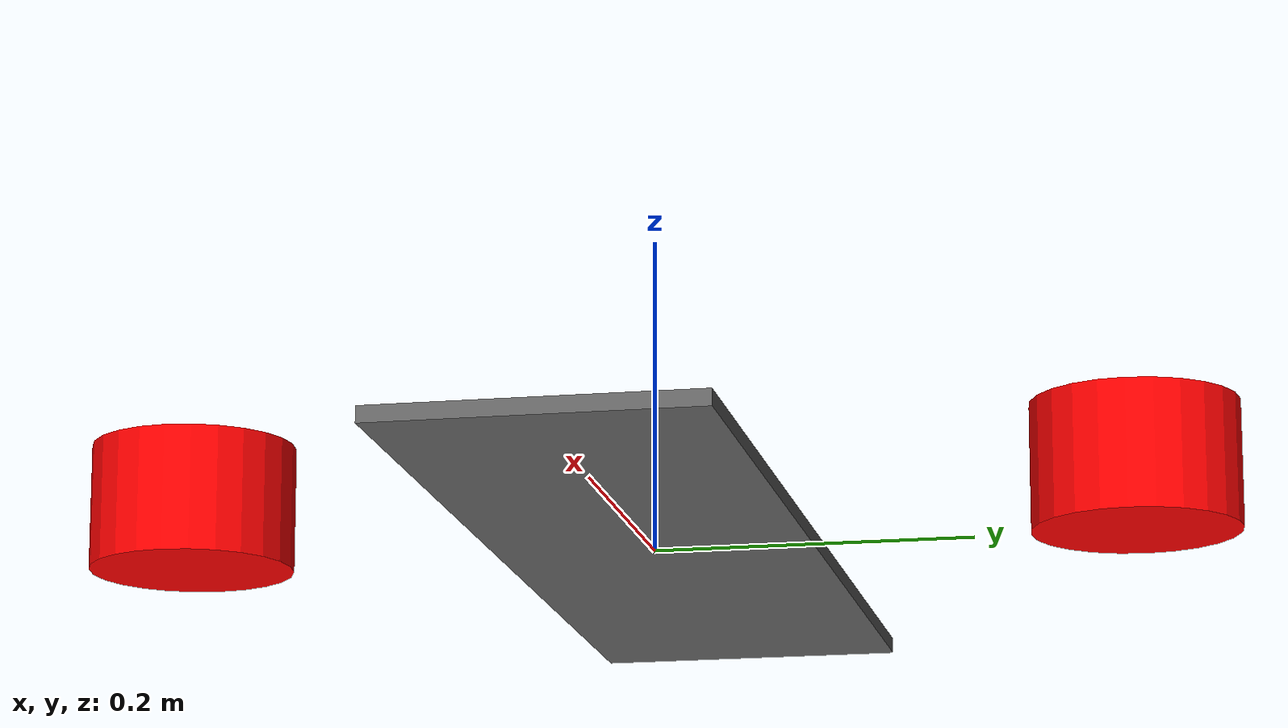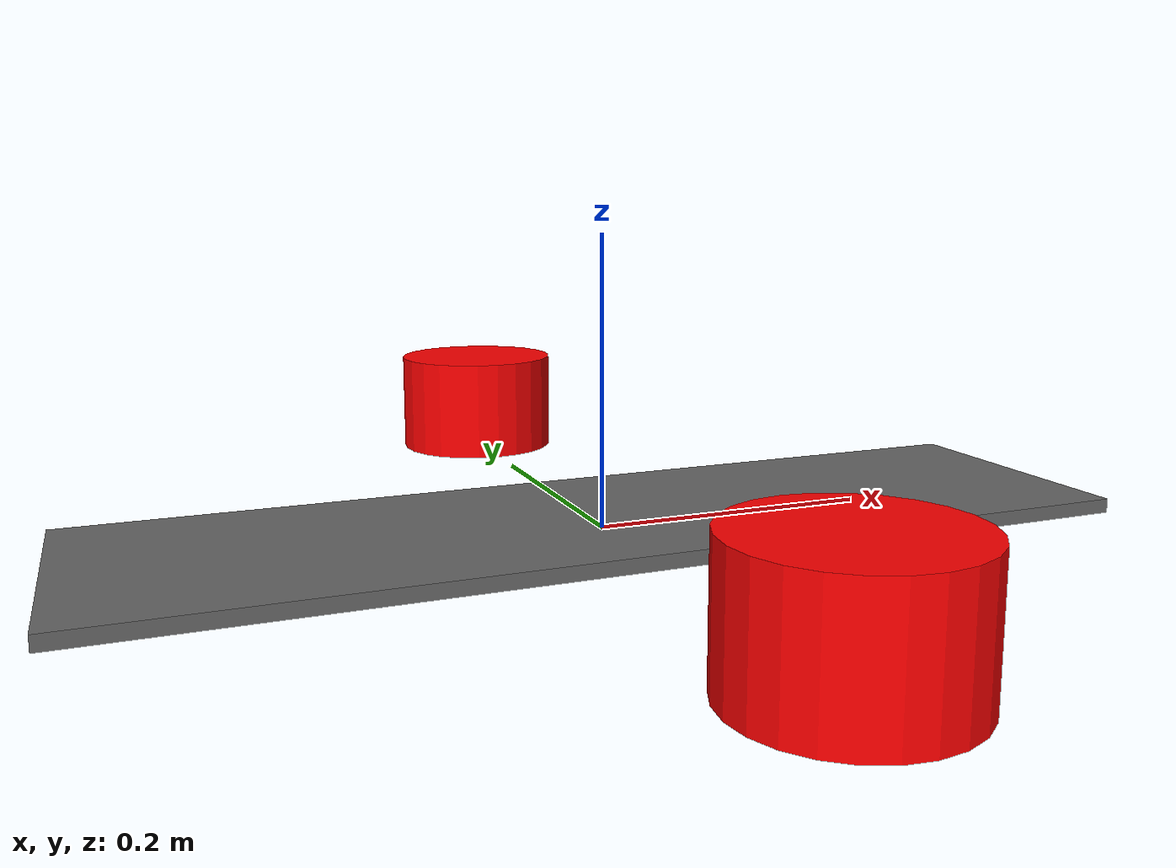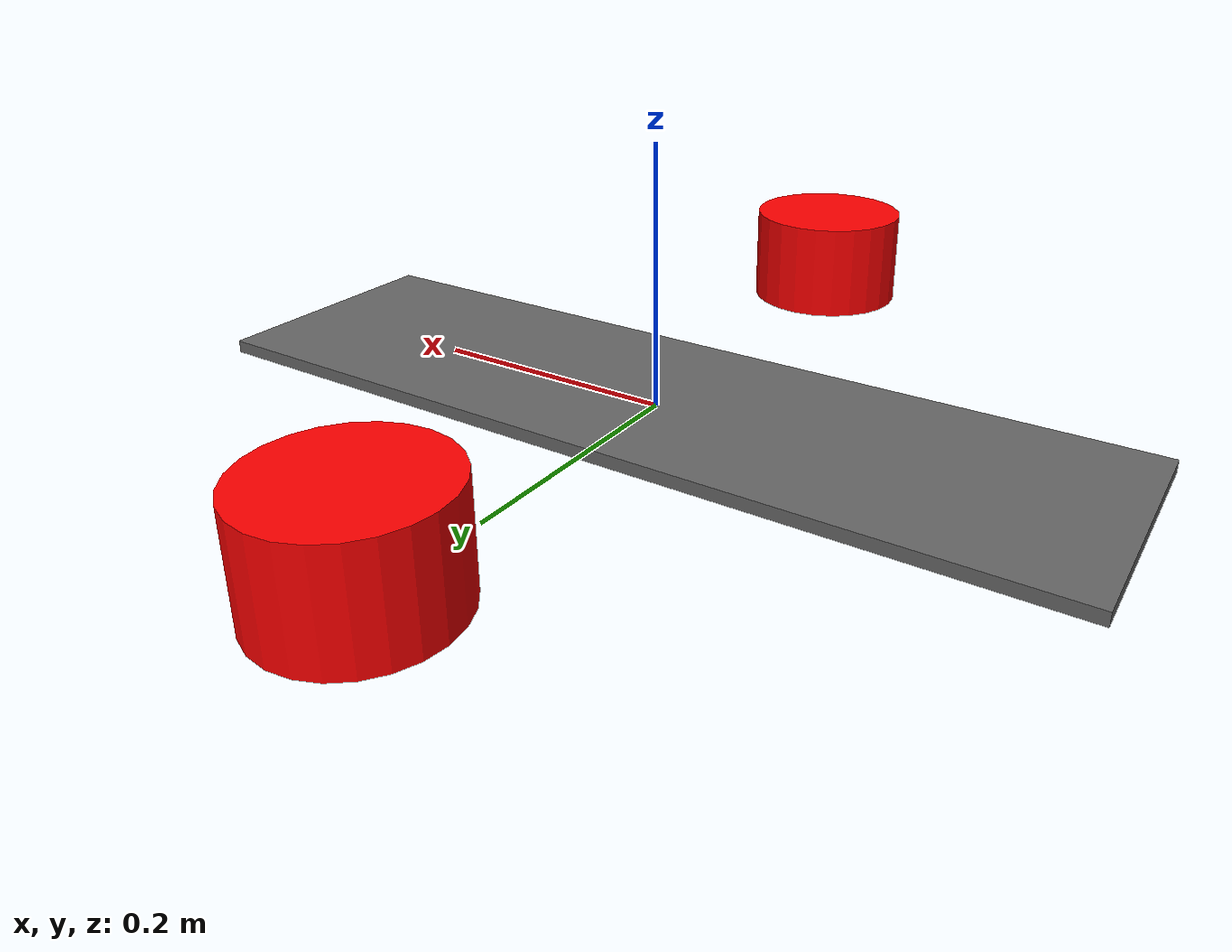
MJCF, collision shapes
<mujoco model="aloha_base_bimanual_v2">
    <compiler angle="radian" meshdir="assets" autolimits="true" />

    <asset>
        <mesh file="vx300s_1_base.stl" scale="0.001 0.001 0.001" />
    </asset>

    <default>
        <default class="vx300s">
            <site group="4" />
            <default class="visual">
                <geom type="mesh" mass="0" group="2" contype="0" conaffinity="0" />
            </default>
            <default class="collision">
                <geom group="3" type="mesh" condim="6" friction="1 5e-3 5e-4" solref=".01 1" />
            </default>
        </default>
    </default>

    <worldbody>
        <body name="base_link" childclass="vx300s" pos="0 0 0.0" euler="0 0 0">
            <geom type="box" size="0.35 0.10 0.005" pos="0 0 0.005" class="collision"
                rgba="0.4 0.4 0.4 1" mass="1.0" />
            <geom name="left_base_collision" type="cylinder" size="0.065 0.04"
                pos="0 0.30 0.04" class="collision" rgba="1 0 0 1" mass="0.5" />
            <geom name="left_base_visual" quat="1 0 0 1" class="visual" mesh="vx300s_1_base"
                pos="0 0.30 0" />
            <geom name="right_base_collision" type="cylinder" size="0.065 0.04"
                pos="0 -0.30 0.04" class="collision" rgba="1 0 0 1" mass="0.5" />
            <geom name="right_base_visual" quat="1 0 0 1" class="visual" mesh="vx300s_1_base"
                pos="0 -0.30 0" />
            <site name="left:shoulder_mount" pos="0 0.30 0.079" euler="0 0 0" />
            <site name="right:shoulder_mount" pos="0 -0.30 0.079" euler="0 0 0" />
        </body>
    </worldbody>

    <custom>
        <numeric name="base_link\body\pos\0\range\y" size='2' data='-0.8 -0.1' />
        <numeric name="base_link\body\pos\1\range\y" size='2' data='-0.0 0.0' />
        <numeric name="base_link\body\pos\2\range\y" size='2' data='-0.1 0.1' />

        <!-- symmetric arm spacing: half-distance varies in [0.20, 0.45] so total
             distance between arms is in [0.40, 0.90] meters -->
        <numeric name="left:shoulder_mount\site\pos\1\range\y" size='2' data='0.20 0.45' />
        <text name="symmetric_arm_spacing"
            data="left:shoulder_mount\site\pos\1\range\y;right:shoulder_mount\site\pos\1\range\-y;left_base_collision\geom\pos\1\range\y;left_base_visual\geom\pos\1\range\y;right_base_collision\geom\pos\1\range\-y;right_base_visual\geom\pos\1\range\-y" />

        <!-- symmetric arm z-yaw: left rotates +theta, right rotates -theta around z,
             theta sampled in [-pi/4, pi/4] -->
        <numeric name="left:shoulder_mount\site\euler\2\range\y" size='2'
            data='-3.141592653589793 3.141592653589793' />
        <text name="symmetric_arm_yaw"
            data="left:shoulder_mount\site\euler\2\range\y;right:shoulder_mount\site\euler\2\range\-y" />
    </custom>

</mujoco>
